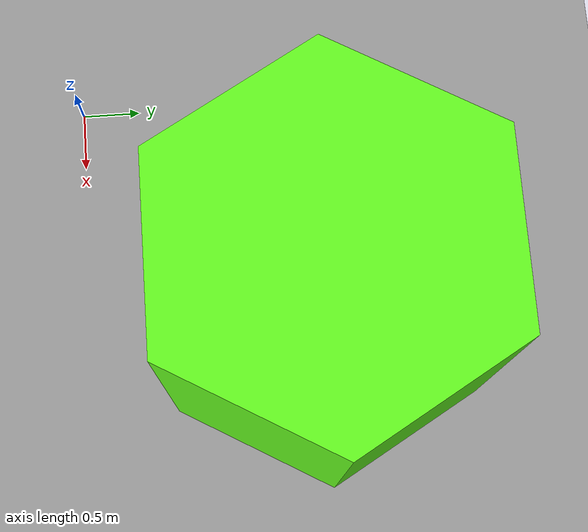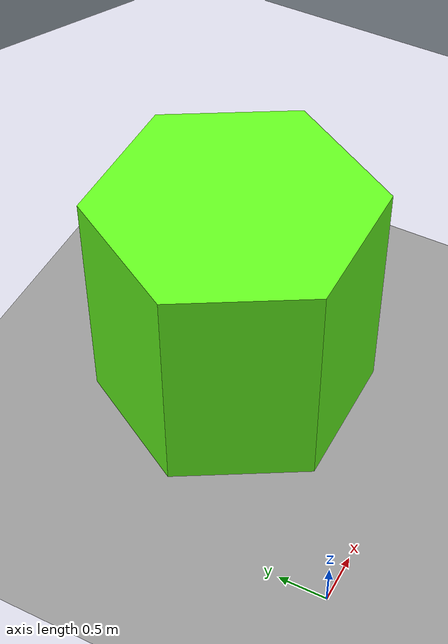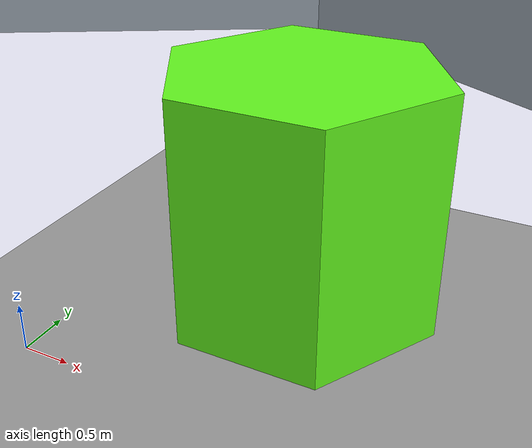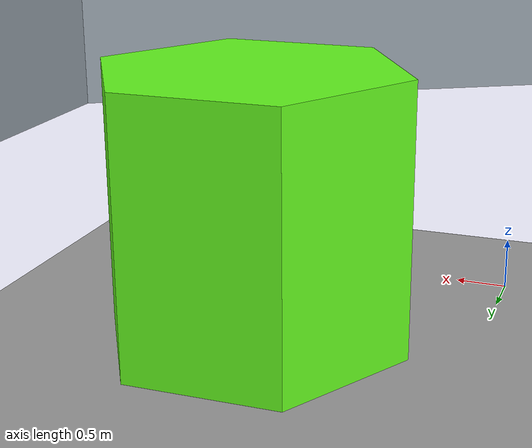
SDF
<?xml version="1.0" ?>
<sdf version="1.7">
  <world name="tb3_world">
    <!-- Sun(광원) -->
    <light name="sun" type="directional">
      <pose>0 0 10 0 0 0</pose>
      <diffuse>1 1 1 1</diffuse>
      <specular>0.1 0.1 0.1 1</specular>
      <attenuation>
        <range>1000</range>
        <constant>0.9</constant>
        <linear>0.01</linear>
        <quadratic>0.001</quadratic>
      </attenuation>
      <direction>-0.5 0.5 -1</direction>
      <cast_shadows>true</cast_shadows>
    </light>

    <!-- Ground Plane -->
    <model name="ground_plane_custom">
      <static>true</static>
      <link name="ground_link">
        <collision name="collision">
          <geometry>
            <plane>
              <normal>0 0 1</normal>
              <size>100 100</size>
            </plane>
          </geometry>
          <surface>
            <friction>
              <ode>
                <mu>1.0</mu>
                <mu2>1.0</mu2>
              </ode>
            </friction>
          </surface>
        </collision>
        <visual name="visual">
          <geometry>
            <plane>
              <normal>0 0 1</normal>
              <size>100 100</size>
            </plane>
          </geometry>
          <material>
            <ambient>0.6 0.6 0.6 1</ambient>
            <diffuse>0.6 0.6 0.6 1</diffuse>
          </material>
        </visual>
      </link>
    </model>

    <!-- 장애물 모델 포함 -->
    <include>
      <uri>model://turtlebot3_world</uri>
    </include>

    <physics name="default" type="ignored">
      <max_step_size>0.001</max_step_size>
      <real_time_update_rate>1000</real_time_update_rate>
    </physics>
  </world>
</sdf>

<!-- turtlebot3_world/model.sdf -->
<sdf version="1.7">
  <model name="turtlebot3_world_assets">
    <static>true</static>

    <!-- 예시 장애물: 육각기둥 -->
    <link name="hex_column">
      <visual name="visual">
        <geometry>
          <mesh>
            <uri>model://turtlebot3_world/meshes/hexagon.dae</uri>
          </mesh>
        </geometry>
        <pose>2 2 0 0 0 0</pose>
      </visual>
      <collision name="collision">
        <geometry>
          <mesh>
            <uri>model://turtlebot3_world/meshes/hexagon.dae</uri>
          </mesh>
        </geometry>
        <pose>2 2 0 0 0 0</pose>
      </collision>
    </link>

    <!-- 예시 벽 -->
    <link name="wall_1">
      <visual name="visual">
        <geometry>
          <mesh>
            <uri>model://turtlebot3_world/meshes/wall.dae</uri>
          </mesh>
        </geometry>
        <pose>-2 0 0 0 0 0</pose>
      </visual>
      <collision name="collision">
        <geometry>
          <mesh>
            <uri>model://turtlebot3_world/meshes/wall.dae</uri>
          </mesh>
        </geometry>
        <pose>-2 0 0 0 0 0</pose>
      </collision>
    </link>

  </model>
</sdf>
